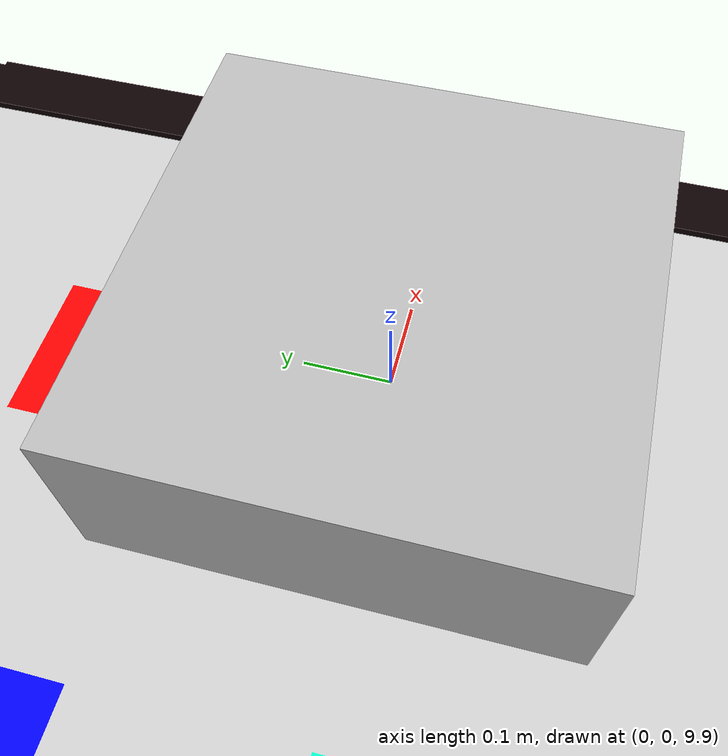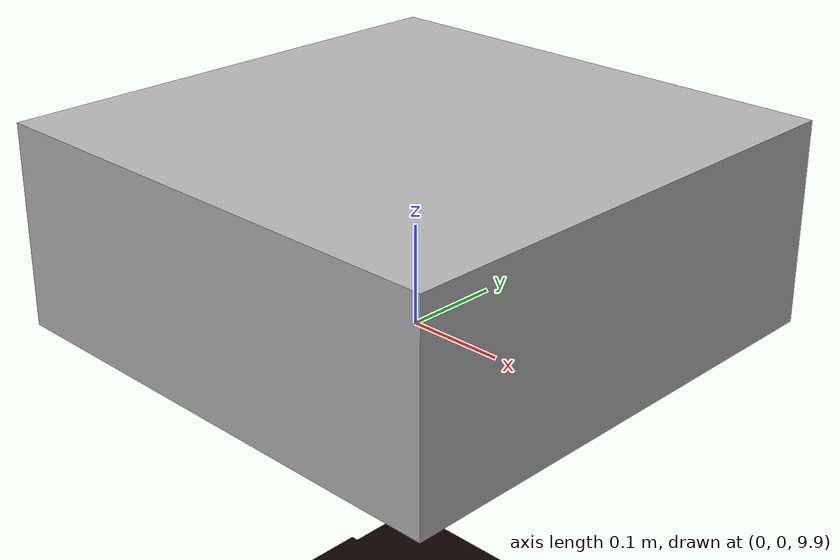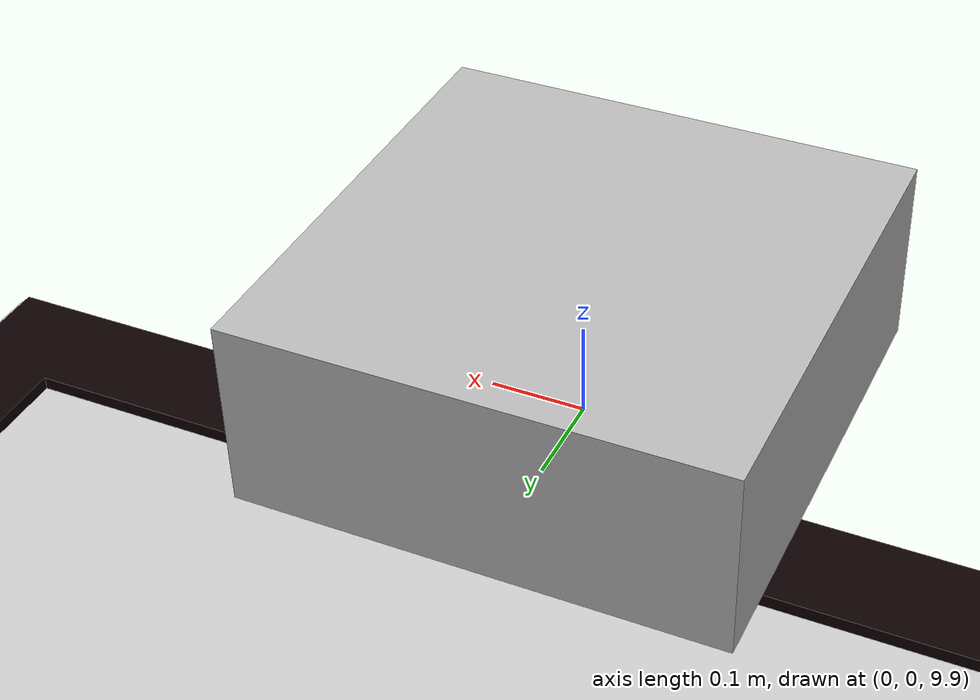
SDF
<sdf version='1.4'>
  <world name='default'>
    <!-- A global light source -->
    <include>
      <uri>model://sun</uri>
    </include>

    <!-- A ground plane -->
    <include>
      <uri>model://ground_plane</uri>
    </include>

    <physics type="ode">
      <real_time_update_rate>1000.0</real_time_update_rate>
      <max_step_size>0.001</max_step_size>
      <real_time_factor>1</real_time_factor>
      <ode>
        <solver>
          <type>quick</type>
          <iters>150</iters>
          <precon_iters>0</precon_iters>
          <sor>1.400000</sor>
          <use_dynamic_moi_rescaling>1</use_dynamic_moi_rescaling>
        </solver>
        <constraints>
          <cfm>0.00001</cfm>
          <erp>0.2</erp>
          <contact_max_correcting_vel>2000.000000</contact_max_correcting_vel>
          <contact_surface_layer>0.01000</contact_surface_layer>
        </constraints>
      </ode>
    </physics>

    <!-- A turtlebot symbol -->
    <include>
      <uri>model://grid_arena</uri>
    </include>

    <scene>
      <ambient>0.4 0.4 0.4 1</ambient>
      <background>0.7 0.7 0.7 1</background>
      <shadows>true</shadows>
    </scene>

    <gui fullscreen='0'>
      <camera name='user_camera'>
        <pose>0.0 0.0 17.0 0 1.5708 0</pose>
        <view_controller>orbit</view_controller>
      </camera>
    </gui>
  </world>
</sdf>

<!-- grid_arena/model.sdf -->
<sdf version='1.7'>
  <model name='grid_arena'>
    <link name='base'>
      <pose>0 0 0 0 -0 0</pose>
      <inertial>
        <pose>0 0 0.1 0 -0 0</pose>
        <mass>100</mass>
        <inertia>
          <ixx>100</ixx>
          <ixy>0</ixy>
          <ixz>0</ixz>
          <iyy>100</iyy>
          <iyz>0</iyz>
          <izz>100</izz>
        </inertia>
      </inertial>
      <self_collide>0</self_collide>
      <enable_wind>0</enable_wind>
      <kinematic>0</kinematic>
      <visual name='base_visual'>
        <pose>0 0 0.1 0 -0 0</pose>
        <geometry>
          <mesh>
            <scale>1 1 1</scale>
            <uri>/home/nsk/Desktop/project_1/src/bot_gazebo/mesh/grid.dae</uri>
          </mesh>
        </geometry>
        <material>
          <shader type='pixel'/>
        </material>
        <transparency>0</transparency>
        <cast_shadows>1</cast_shadows>
      </visual>
      <collision name='base_collision'>
        <laser_retro>0</laser_retro>
        <max_contacts>10</max_contacts>
        <pose>0 0 0.1 0 -0 0</pose>
        <geometry>
          <mesh>
            <uri>/home/nsk/Desktop/project_1/src/bot_gazebo/mesh/grid.dae</uri>
            <scale>1 1 1</scale>
          </mesh>
        </geometry>
        <surface>
          <friction>
            <ode>
              <mu>1</mu>
              <mu2>1</mu2>
              <fdir1>0 0 0</fdir1>
              <slip1>0</slip1>
              <slip2>0</slip2>
            </ode>
            <torsional>
              <coefficient>1</coefficient>
              <patch_radius>0</patch_radius>
              <surface_radius>0</surface_radius>
              <use_patch_radius>1</use_patch_radius>
              <ode>
                <slip>0</slip>
              </ode>
            </torsional>
          </friction>
          <bounce>
            <restitution_coefficient>0</restitution_coefficient>
            <threshold>1e+06</threshold>
          </bounce>
          <contact>
            <collide_without_contact>0</collide_without_contact>
            <collide_without_contact_bitmask>1</collide_without_contact_bitmask>
            <collide_bitmask>1</collide_bitmask>
            <ode>
              <soft_cfm>0</soft_cfm>
              <soft_erp>0.2</soft_erp>
              <kp>1e+13</kp>
              <kd>1</kd>
              <max_vel>0.01</max_vel>
              <min_depth>0</min_depth>
            </ode>
            <bullet>
              <split_impulse>1</split_impulse>
              <split_impulse_penetration_threshold>-0.01</split_impulse_penetration_threshold>
              <soft_cfm>0</soft_cfm>
              <soft_erp>0.2</soft_erp>
              <kp>1e+13</kp>
              <kd>1</kd>
            </bullet>
          </contact>
        </surface>
      </collision>
    </link>
    <link name='camera_link'>
      <pose>0 -0 5 0 -0 0</pose>
      <inertial>
        <pose>0 0 0 0 -0 0</pose>
        <mass>0.001</mass>
        <inertia>
          <ixx>0.0001</ixx>
          <ixy>0</ixy>
          <ixz>0</ixz>
          <iyy>0.0001</iyy>
          <iyz>0</iyz>
          <izz>0.0001</izz>
        </inertia>
      </inertial>
      <sensor name='camera_sensor' type='camera'>
        <update_rate>30</update_rate>
        <camera>
          <pose>0.035 0 0.078 3.14159 -1.57079 3.14159</pose>
          <horizontal_fov>1.48353</horizontal_fov>
          <image>
            <format>R8G8B8</format>
            <width>1920</width>
            <height>1080</height>
          </image>
          <clip>
            <near>0.01</near>
            <far>100</far>
          </clip>
        </camera>
        <plugin name='camera_camera_controller' filename='libgazebo_ros_camera.so'>
          <alwaysOn>1</alwaysOn>
          <updateRate>0.0</updateRate>
          <cameraName>/camera</cameraName>
          <imageTopicName>image_raw</imageTopicName>
          <cameraInfoTopicName>camera_info</cameraInfoTopicName>
          <frameName>camera_link</frameName>
          <hackBaseline>0.07</hackBaseline>
          <distortionK1>0.0</distortionK1>
          <distortionK2>0.0</distortionK2>
          <distortionK3>0.0</distortionK3>
          <distortionT1>0.0</distortionT1>
          <distortionT2>0.0</distortionT2>
          <robotNamespace>/</robotNamespace>
        </plugin>
      </sensor>
      <self_collide>0</self_collide>
      <enable_wind>0</enable_wind>
      <kinematic>0</kinematic>
      <visual name='camera_link_visual'>
        <pose>0 0 5 0 -0 0</pose>
        <geometry>
          <box>
            <size>0.5 0.5 0.2</size>
          </box>
        </geometry>
        <material>
          <shader type='pixel'/>
        </material>
        <transparency>0</transparency>
        <cast_shadows>1</cast_shadows>
      </visual>
      <collision name='camera_link_collision'>
        <laser_retro>0</laser_retro>
        <max_contacts>10</max_contacts>
        <pose>0 0 0 0 -0 0</pose>
        <geometry>
          <box>
            <size>0.5 0.5 0.2</size>
          </box>
        </geometry>
        <surface>
          <friction>
            <ode>
              <mu>1</mu>
              <mu2>1</mu2>
              <fdir1>0 0 0</fdir1>
              <slip1>0</slip1>
              <slip2>0</slip2>
            </ode>
            <torsional>
              <coefficient>1</coefficient>
              <patch_radius>0</patch_radius>
              <surface_radius>0</surface_radius>
              <use_patch_radius>1</use_patch_radius>
              <ode>
                <slip>0</slip>
              </ode>
            </torsional>
          </friction>
          <bounce>
            <restitution_coefficient>0</restitution_coefficient>
            <threshold>1e+06</threshold>
          </bounce>
          <contact>
            <collide_without_contact>0</collide_without_contact>
            <collide_without_contact_bitmask>1</collide_without_contact_bitmask>
            <collide_bitmask>1</collide_bitmask>
            <ode>
              <soft_cfm>0</soft_cfm>
              <soft_erp>0.2</soft_erp>
              <kp>1e+13</kp>
              <kd>1</kd>
              <max_vel>0.01</max_vel>
              <min_depth>0</min_depth>
            </ode>
            <bullet>
              <split_impulse>1</split_impulse>
              <split_impulse_penetration_threshold>-0.01</split_impulse_penetration_threshold>
              <soft_cfm>0</soft_cfm>
              <soft_erp>0.2</soft_erp>
              <kp>1e+13</kp>
              <kd>1</kd>
            </bullet>
          </contact>
        </surface>
      </collision>
    </link>
    <static>0</static>
    <allow_auto_disable>1</allow_auto_disable>
  </model>
</sdf>
